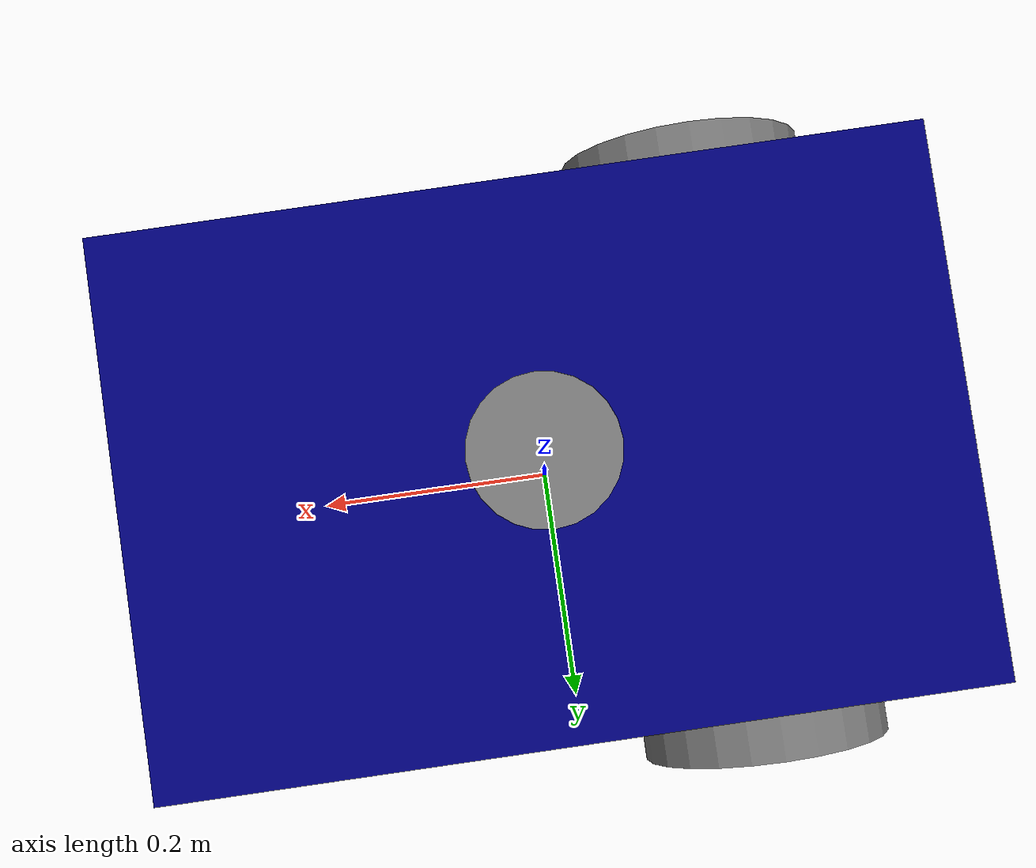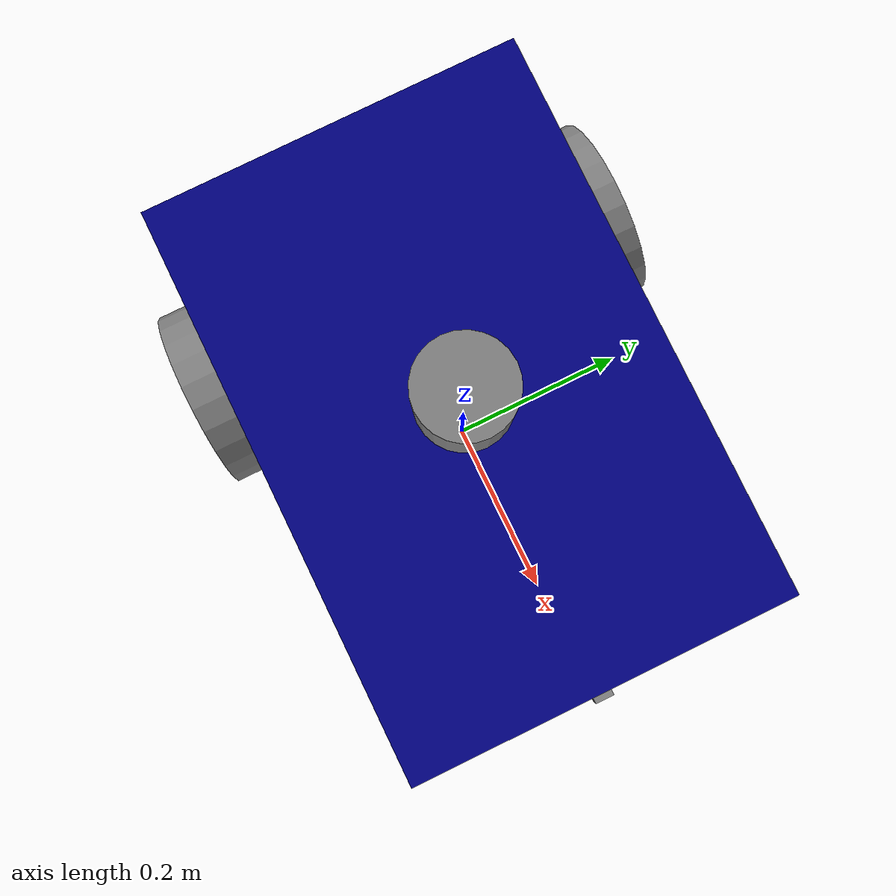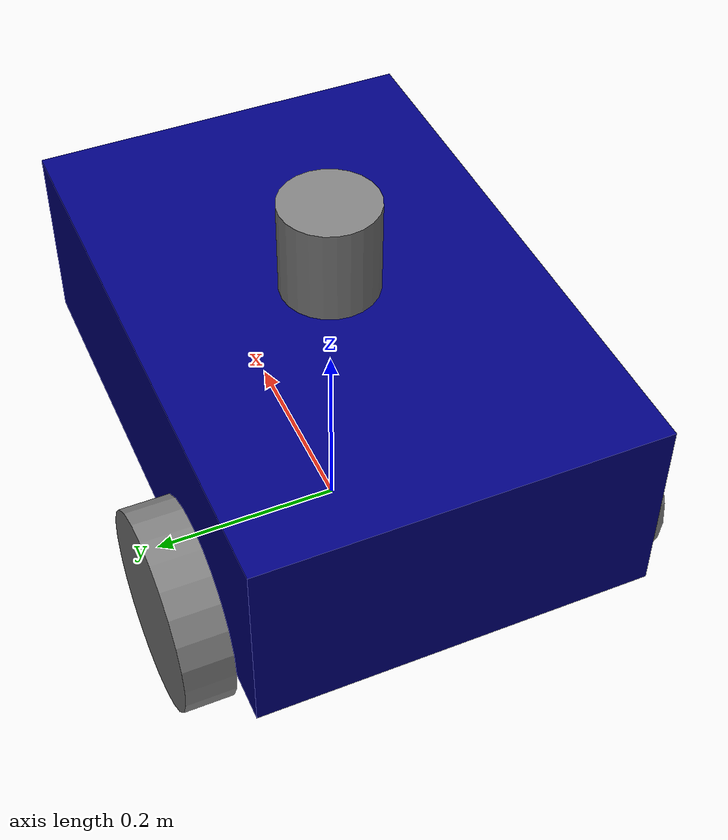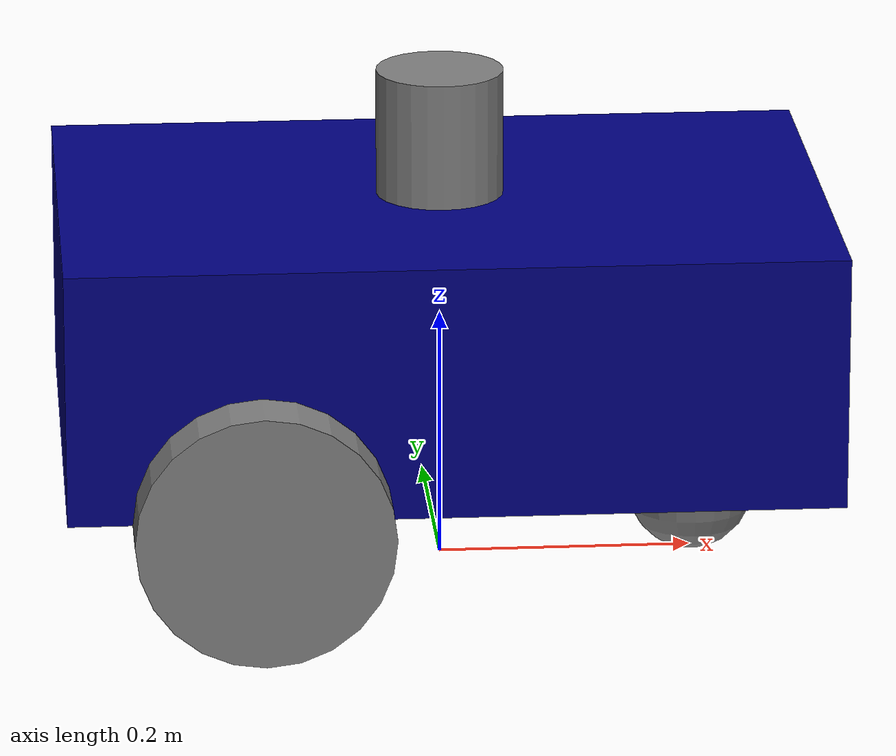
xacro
<?xml version="1.0"?>
<robot name="my_robot"
    xmlns:xacro="http://www.ros.org/wiki/xacro">

    <xacro:include filename="common_properties.xacro" />
    <xacro:include filename="mobile_base.xacro" />
    <xacro:include filename="mobile_base_gazebo.xacro" />

    <xacro:include filename="camera.xacro" />
    <xacro:include filename="imu_sensor.xacro" />
    <xacro:include filename="imu_gazebo.xacro" />
    <xacro:include filename="laser_sensor.xacro" />

</robot>

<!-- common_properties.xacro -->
<robot xmlns:xacro="http://www.ros.org/wiki/xacro">

    <material name="blue">
        <color rgba="0 0 0.5 1" />
    </material>

    <material name="grey">
        <color rgba="0.5 0.5 0.5 1" />
    </material>

    <material name="orange">
        <color rgba="0.98 0.75 0.57 1"/>
    </material>

    <material name="yellow">
        <color rgba="1.0 1.0 0.0 1"/>
    </material>

    <xacro:macro name="box_inertia" params="m l w h xyz rpy">
        <inertial>
            <origin xyz="${xyz}" rpy="${rpy}" />
            <mass value="${m}" />
            <inertia ixx="${(m/12) * (h*h + l*l)}" ixy="0" ixz="0"
                     iyy="${(m/12) * (w*w + l*l)}" iyz="0"
                     izz="${(m/12) * (w*w + h*h)}" />
        </inertial>
    </xacro:macro>

    <xacro:macro name="cylinder_inertia" params="m r h xyz rpy">
        <inertial>
            <origin xyz="${xyz}" rpy="${rpy}" />
            <mass value="${m}" />
            <inertia ixx="${(m/12) * (3*r*r + h*h)}" ixy="0" ixz="0"
                     iyy="${(m/12) * (3*r*r + h*h)}" iyz="0"
                     izz="${(m/2) * (r*r)}" />
        </inertial>
    </xacro:macro>

    <xacro:macro name="sphere_inertia" params="m r xyz rpy">
        <inertial>
            <origin xyz="${xyz}" rpy="${rpy}" />
            <mass value="${m}" />
            <inertia ixx="${(2/5) * m * r * r}" ixy="0" ixz="0"
                     iyy="${(2/5) * m * r * r}" iyz="0"
                     izz="${(2/5) * m * r * r}" />
        </inertial>
    </xacro:macro>

</robot>

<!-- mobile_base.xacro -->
<robot xmlns:xacro="http://www.ros.org/wiki/xacro">

    <xacro:property name="base_length" value="0.6" />
    <xacro:property name="base_width" value="0.4" />
    <xacro:property name="base_height" value="0.2" />
    <xacro:property name="wheel_radius" value="0.1" />
    <xacro:property name="wheel_length" value="0.05" />
    <xacro:property name="base_link_mass" value="5.0" />
    <xacro:property name="wheel_link_mass" value="1.0" />
    <xacro:property name="caster_wheel_link_mass" value="0.5" />

    <link name="base_footprint" />

    <link name="base_link">
        <visual>
            <geometry>
                <box size="${base_length} ${base_width} ${base_height}" />
            </geometry>
            <origin xyz="0 0 ${base_height / 2.0}" rpy="0 0 0" />
            <material name="blue" />
        </visual>
        <collision>
            <geometry>
                <box size="${base_length} ${base_width} ${base_height}" />
            </geometry>
            <origin xyz="0 0 ${base_height / 2.0}" rpy="0 0 0" />
        </collision>
        <xacro:box_inertia m="${base_link_mass}" l="${2*base_length}" w="${2*base_width}" h="${2*base_height}" xyz="0 0 ${base_height / 2.0}" rpy="0 0 0" />
    </link>

    <xacro:macro name="wheel_link" params="prefix">
        <link name="${prefix}_wheel_link">
            <visual>
                <geometry>
                    <cylinder radius="${wheel_radius}" length="${wheel_length}" />
                </geometry>
                <origin xyz="0 0 0" rpy="${pi / 2.0} 0 0" />
                <material name="grey" />
            </visual>
            <collision>
                <geometry>
                    <cylinder radius="${wheel_radius}" length="${wheel_length}" />
                </geometry>
                <origin xyz="0 0 0" rpy="${pi / 2.0} 0 0" />
            </collision>
            <xacro:cylinder_inertia m="${wheel_link_mass}" r="${2*wheel_radius}" h="${2*wheel_length}" xyz="0 0 0" rpy="${pi / 2.0} 0 0" />
        </link>
    </xacro:macro>

    <xacro:wheel_link prefix="right" />
    <xacro:wheel_link prefix="left" />

    <link name="caster_wheel_link">
        <visual>
            <geometry>
                <sphere radius="${wheel_radius / 2.0}" />
            </geometry>
            <origin xyz="0 0 0" rpy="0 0 0" />
            <material name="grey" />
        </visual>
        <collision>
            <geometry>
                <sphere radius="${wheel_radius / 2.0}" />
            </geometry>
            <origin xyz="0 0 0" rpy="0 0 0" />
        </collision>
        <xacro:sphere_inertia m="${caster_wheel_link_mass}" r="${2*wheel_radius / 2.0}" xyz="0 0 0" rpy="0 0 0" />
    </link>

    <joint name="base_joint" type="fixed">
        <parent link="base_footprint" />
        <child link="base_link" />
        <origin xyz="0 0 ${wheel_radius}" rpy="0 0 0"/>
    </joint>

    <joint name="base_right_wheel_joint" type="continuous">
        <parent link="base_link" />
        <child link="right_wheel_link" />
        <origin xyz="${-base_length / 4.0} ${-(base_width + wheel_length) / 2.0} 0" rpy="0 0 0" />
        <axis xyz="0 1 0" />
    </joint>

    <joint name="base_left_wheel_joint" type="continuous">
        <parent link="base_link" />
        <child link="left_wheel_link" />
        <origin xyz="${-base_length / 4.0} ${(base_width + wheel_length) / 2.0} 0" rpy="0 0 0" />
        <axis xyz="0 1 0" />
    </joint>

    <joint name="base_caster_wheel_joint" type="fixed">
        <parent link="base_link" />
        <child link="caster_wheel_link" />
        <origin xyz="${base_length / 3.0} 0 ${-wheel_radius / 2.0}" rpy="0 0 0" />
    </joint>

</robot>

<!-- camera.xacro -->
<robot xmlns:xacro="http://www.ros.org/wiki/xacro">

    <xacro:property name="camera_length" value="0.02"/>
    <xacro:property name="camera_width" value="0.02"/>
    <xacro:property name="camera_heigth" value="0.02"/>

    <link name="camera_link">
        <visual>
            <geometry>
                <box size="${camera_length} ${camera_width} ${camera_heigth}" />
            </geometry>
            <material name="grey" />
            <collision>
                <geometry>
                    <box size="${camera_length} ${camera_width} ${camera_heigth}" />
                </geometry>
            </collision>
            <xacro:box_inertia m="0.1" l="${camera_length}" w="${camera_width}" h="${camera_heigth}" xyz="0 0 0" rpy="0 0 0" />
        </visual>
    </link>

    <joint name="base_camera_joint" type="fixed">
        <parent link="base_link" />
        <child link="camera_link"/>
        <origin xyz="${(base_length + camera_length) / 2.0} 0 ${base_height / 2.0}" rpy="0 0 0" />
    </joint>

    <gazebo reference="camera_link">
        <material>Gazebo/Black</material>
        <sensor name="camera_sensor" type="camera">
            <pose>0 0 0 0 0 0</pose>
            <visualize>true</visualize>
            <update_rate>10.0</update_rate>
            <plugin name="camera_controller" filename="libgazebo_ros_camera.so">
                <frame_name>camera_link</frame_name>
            </plugin>
        </sensor>
    </gazebo>
</robot>

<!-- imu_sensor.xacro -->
<robot xmlns:xacro="http://www.ros.org/wiki/xacro">

    <xacro:property name="imu_length" value = "0.01"/>
    <xacro:property name="imu_width" value = "0.01"/>
    <xacro:property name="imu_heigth" value = "0.01"/>

    <link name="imu_link">
        <visual>
            <geometry>
                <box size="${imu_length} ${imu_width} ${imu_heigth}"/>
            </geometry>
            <origin xyz="0 0 0" rpy="0 0 0"/>
            <material name="grey"/>
        </visual>
        <collision>
            <geometry>
                <box size="0.01 0.01 0.01"/>
            </geometry>
            <origin xyz="0 0 0" rpy="0 0 0"/>
        </collision>
        <xacro:box_inertia m="0.1" l="${imu_length}" w="${imu_width}" h="${imu_heigth}" xyz="0 0 0" rpy="0 0 0" />
    </link>

    <joint name="base_imu_joint" type="fixed">
        <parent link="base_link"/>
        <child link="imu_link"/>
        <origin xyz="0 0 0" rpy="0 0 0"/>
    </joint>

</robot>

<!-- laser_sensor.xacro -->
<robot xmlns:xacro="http://www.ros.org/wiki/xacro">

    <xacro:property name="radius" value="0.05"/>
    <xacro:property name="height" value="0.1"/>
    <xacro:property name="mass" value="1.0"/>

    <link name="laser_link">
        <visual>
            <geometry>
                <cylinder radius="${radius}" length="${height}"/>
            </geometry>
            <origin xyz= "0 0 0" rpy = "0 0 0"/>
            <material name="grey"/>
        </visual>
        <collision>
            <geometry>
                <cylinder radius="${radius}" length="${height}"/>
            </geometry>
            <origin xyz= "0 0 0" rpy = "0 0 0"/>
        </collision>
        <xacro:cylinder_inertia m="${mass}" r="${radius}" h="${height}" xyz="0 0 0" rpy="0 0 0" />

    </link>

    <joint name="base_laser_joint" type="fixed">
        <parent link="base_link"/>
        <child link="laser_link"/>
        <origin xyz="0 0  ${base_height + (height/ 2.0)}" rpy="0 0 0"/>
    </joint>

    <gazebo reference = "laser_link">
        <sensor name="hls_lfcd_lds" type="ray">
            <always_on>true</always_on>
            <visualize>true</visualize>
            <pose>0.275 0 0.205 0 0 0</pose>
            <update_rate>5</update_rate>
            <ray>
                <scan>
                    <horizontal>
                        <samples>360</samples>
                        <resolution>1.000000</resolution>
                        <min_angle>0.000000</min_angle>
                        <max_angle>6.280000</max_angle>
                    </horizontal>
                </scan>
                <range>
                    <min>0.120000</min>
                    <max>3.5</max>
                    <resolution>0.015000</resolution>
                </range>
                <noise>
                    <type>gaussian</type>
                    <mean>0.0</mean>
                    <stddev>0.01</stddev>
                </noise>
            </ray>
            <plugin name="my_robot_laserscan" filename="libgazebo_ros_ray_sensor.so">
                <ros>
                    <remapping>~/out:=scan</remapping>
                </ros>
                <output_type>sensor_msgs/LaserScan</output_type>
                <frame_name>laser_link</frame_name>
            </plugin>
        </sensor>
    </gazebo>

</robot>
